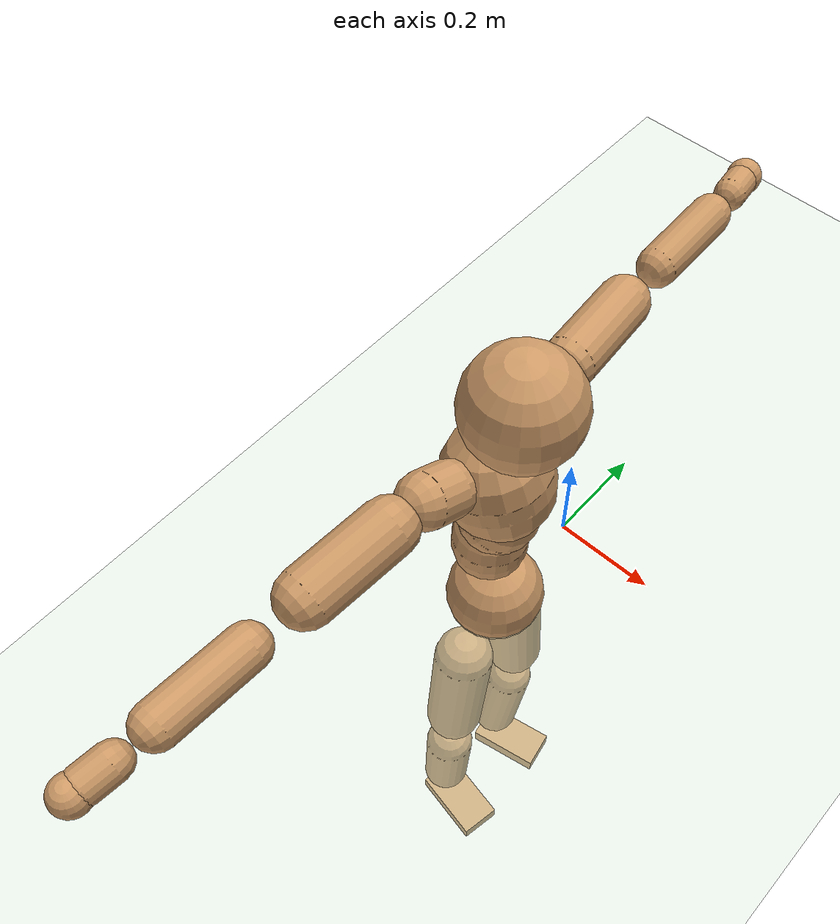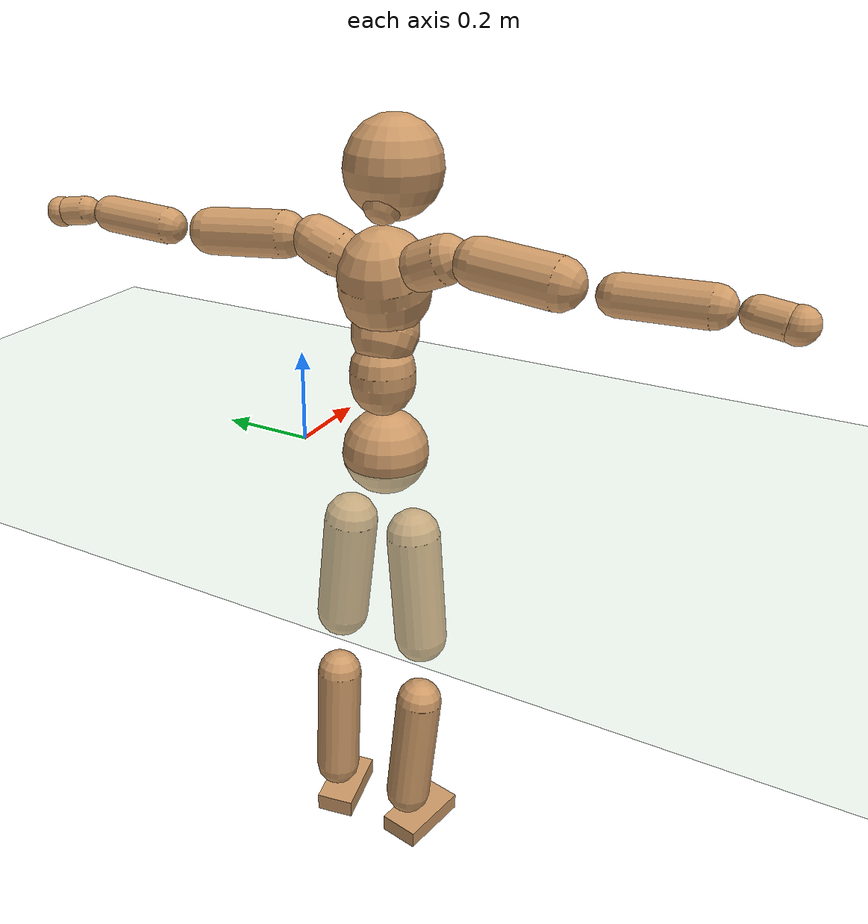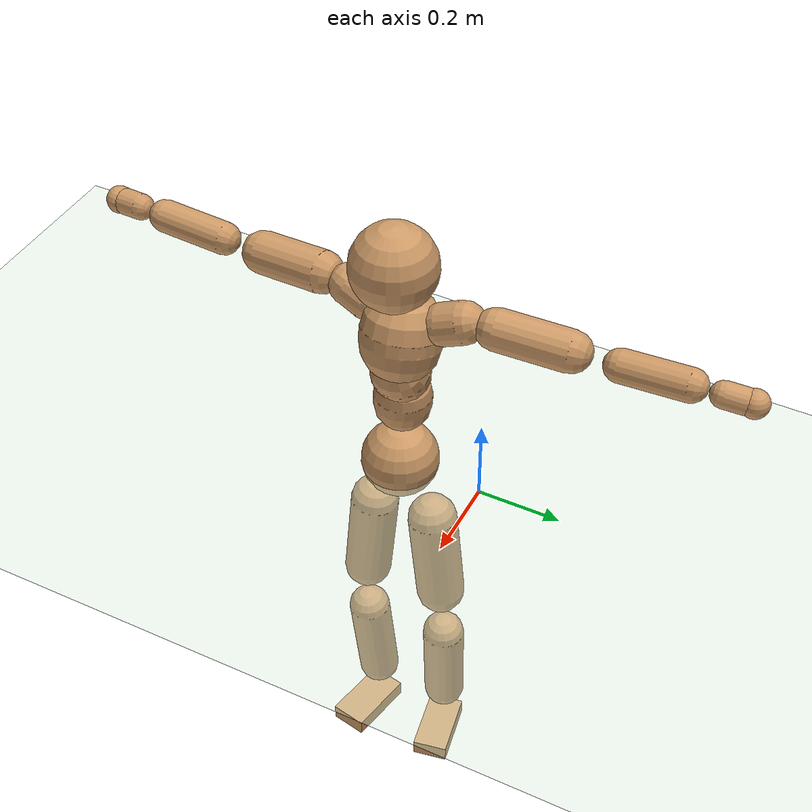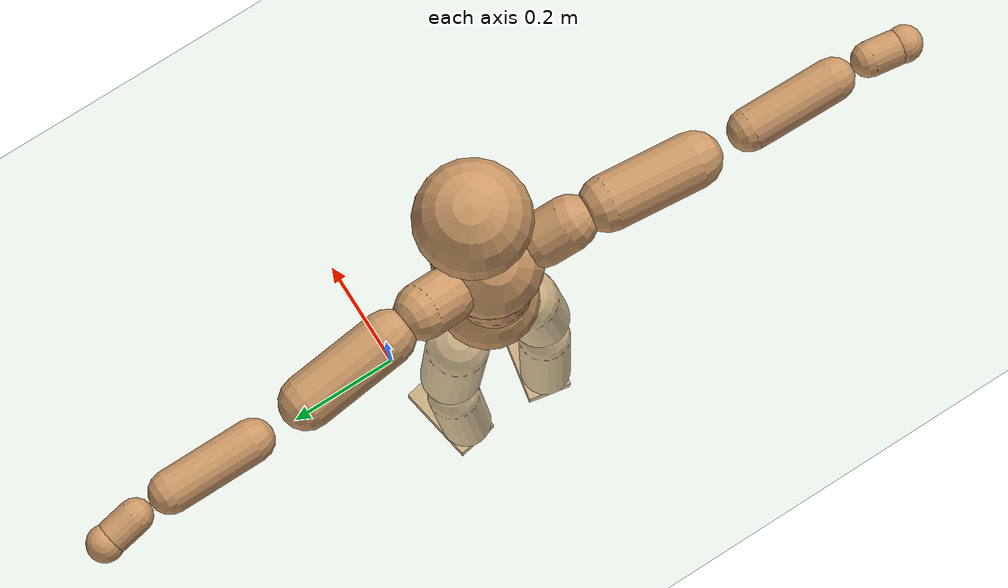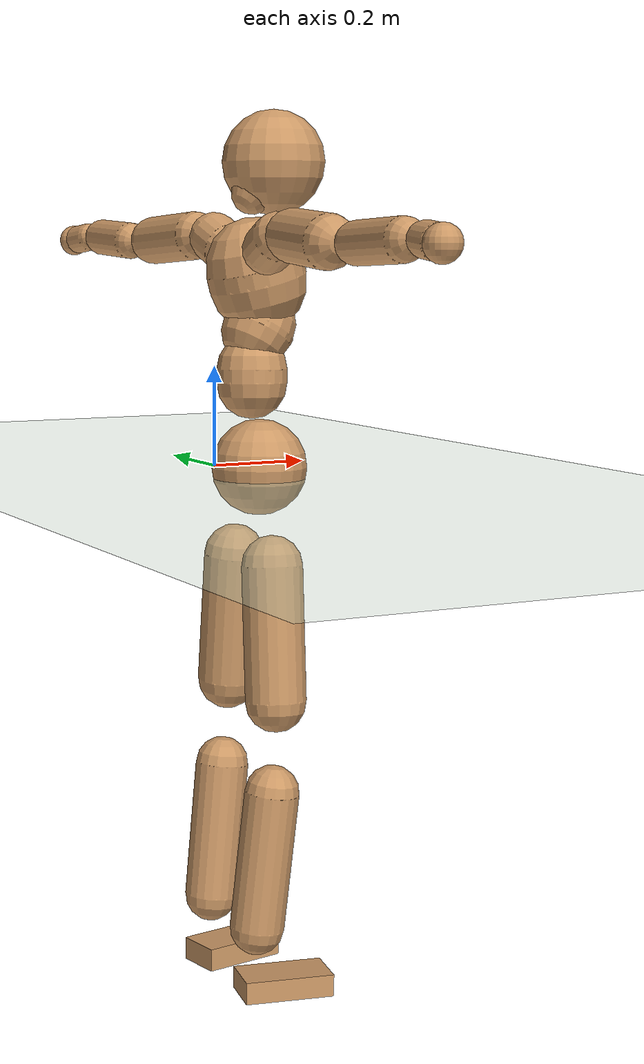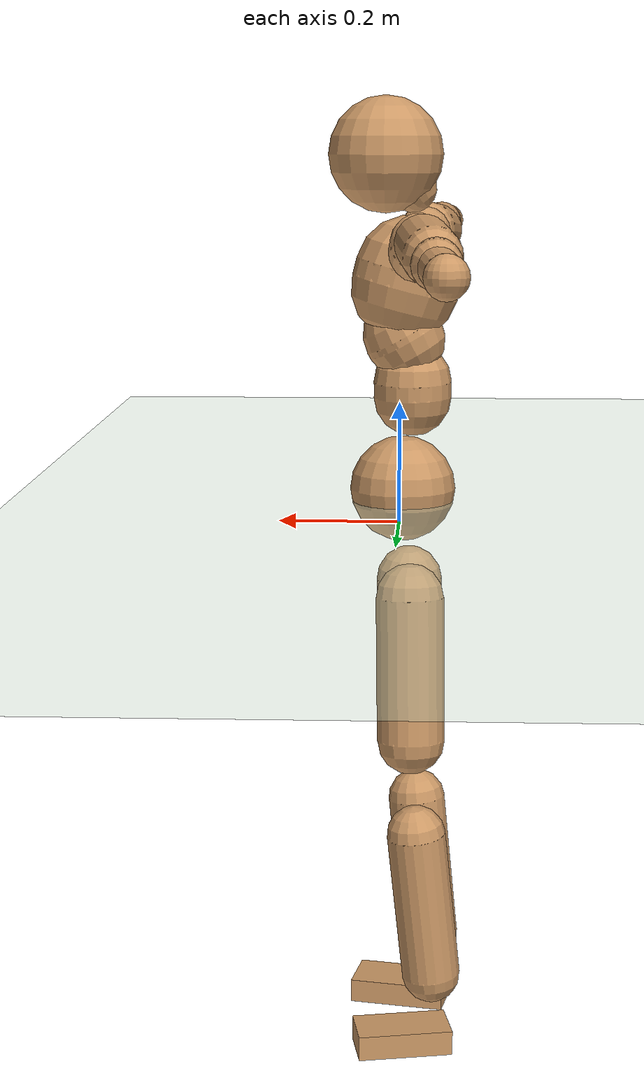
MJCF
<mujoco model="humanoid">
  <compiler coordinate="local" angle="radian"/>
  <default>
    <joint damping="0.0" armature="0.01" stiffness="0.0" limited="true"/>
    <geom conaffinity="1" condim="3" contype="7" margin="0.001" rgba="0.8 0.6 .4 1"/>
  </default>
  <asset>
    <texture type="skybox" builtin="gradient" rgb1=".4 .5 .6" rgb2="0 0 0" width="100" height="100"/>
    <texture builtin="flat" height="1278" mark="cross" markrgb="1 1 1" name="texgeom" random="0.01" rgb1="0.8 0.6 0.4" rgb2="0.8 0.6 0.4" type="cube" width="127"/>
    <texture builtin="checker" height="100" name="texplane" rgb1="0 0 0" rgb2="0.8 0.8 0.8" type="2d" width="100"/>
    <material name="MatPlane" reflectance="0.5" shininess="1" specular="1" texrepeat="60 60" texture="texplane"/>
    <material name="geom" texture="texgeom" texuniform="true"/>
  </asset>
  <worldbody>
    <light cutoff="100" diffuse="1 1 1" dir="-0 0 -1.3" directional="true" exponent="1" pos="0 0 1.3" specular=".1 .1 .1"/>
    <geom conaffinity="1" condim="3" name="floor" pos="0 0 0" rgba="0.8 0.9 0.8 1" size="100 100 .2" type="plane" material="MatPlane"/>
    <body name="Pelvis" pos="-0.0009 -0.2051 0.0192">
      <freejoint name="Pelvis"/>
      <geom type="sphere" contype="1" conaffinity="1" density="500" size="0.0927" pos="0.0000 0.0000 0.0000" name="Pelvis"/>
      <body name="L_Hip" pos="-0.014 0.0698 -0.0955">
        <joint name="L_Hip_x" type="hinge" pos="0 0 0" axis="1 0 0" stiffness="800" damping="80" armature="0.02" range="-180.0000 180.0000"/>
        <joint name="L_Hip_y" type="hinge" pos="0 0 0" axis="0 1 0" stiffness="800" damping="80" armature="0.02" range="-180.0000 180.0000"/>
        <joint name="L_Hip_z" type="hinge" pos="0 0 0" axis="0 0 1" stiffness="800" damping="80" armature="0.02" range="-180.0000 180.0000"/>
        <geom type="capsule" contype="1" conaffinity="1" density="500" fromto="-0.0011 0.0079 -0.0849 -0.0043 0.0316 -0.3397" size="0.0599" name="L_Hip"/>
        <body name="L_Knee" pos="-0.0053 0.0395 -0.4246">
          <joint name="L_Knee_x" type="hinge" pos="0 0 0" axis="1 0 0" stiffness="800" damping="80" armature="0.02" range="-180.0000 180.0000"/>
          <joint name="L_Knee_y" type="hinge" pos="0 0 0" axis="0 1 0" stiffness="800" damping="80" armature="0.02" range="-180.0000 180.0000"/>
          <joint name="L_Knee_z" type="hinge" pos="0 0 0" axis="0 0 1" stiffness="800" damping="80" armature="0.02" range="-180.0000 180.0000"/>
          <geom type="capsule" contype="1" conaffinity="1" density="500" fromto="-0.0094 -0.0026 -0.0902 -0.0375 -0.0104 -0.3608" size="0.0527" name="L_Knee"/>
          <body name="L_Ankle" pos="-0.0469 -0.013 -0.451">
            <joint name="L_Ankle_x" type="hinge" pos="0 0 0" axis="1 0 0" stiffness="800" damping="80" armature="0.02" range="-180.0000 180.0000"/>
            <joint name="L_Ankle_y" type="hinge" pos="0 0 0" axis="0 1 0" stiffness="800" damping="80" armature="0.02" range="-180.0000 180.0000"/>
            <joint name="L_Ankle_z" type="hinge" pos="0 0 0" axis="0 0 1" stiffness="800" damping="80" armature="0.02" range="-180.0000 180.0000"/>
            <geom type="box" contype="1" conaffinity="1" density="500" pos="0.0613 0.0114 -0.0310" size="0.0856 0.045 0.0226" quat="0.9958 0.0000 0.0000 0.0917" name="L_Ankle"/>
            <body name="L_Toe" pos="0.1226 0.0228 -0.062">
              <joint name="L_Toe_x" type="hinge" pos="0 0 0" axis="1 0 0" stiffness="500" damping="50" armature="0.02" range="-180.0000 180.0000"/>
              <joint name="L_Toe_y" type="hinge" pos="0 0 0" axis="0 1 0" stiffness="500" damping="50" armature="0.02" range="-180.0000 180.0000"/>
              <joint name="L_Toe_z" type="hinge" pos="0 0 0" axis="0 0 1" stiffness="500" damping="50" armature="0.02" range="-180.0000 180.0000"/>
              <geom type="box" contype="1" conaffinity="1" density="500" pos="0.0000 0.0000 0.0299" size="0.0009 0.0023 0.0011" quat="0.9952 0.0000 0.0000 0.0979" name="L_Toe"/>
            </body>
          </body>
        </body>
      </body>
      <body name="R_Hip" pos="-0.0089 -0.0672 -0.0949">
        <joint name="R_Hip_x" type="hinge" pos="0 0 0" axis="1 0 0" stiffness="800" damping="80" armature="0.02" range="-180.0000 180.0000"/>
        <joint name="R_Hip_y" type="hinge" pos="0 0 0" axis="0 1 0" stiffness="800" damping="80" armature="0.02" range="-180.0000 180.0000"/>
        <joint name="R_Hip_z" type="hinge" pos="0 0 0" axis="0 0 1" stiffness="800" damping="80" armature="0.02" range="-180.0000 180.0000"/>
        <geom type="capsule" contype="1" conaffinity="1" density="500" fromto="-0.0017 -0.0093 -0.0862 -0.0066 -0.0371 -0.3450" size="0.059" name="R_Hip"/>
        <body name="R_Knee" pos="-0.0083 -0.0464 -0.4312">
          <joint name="R_Knee_x" type="hinge" pos="0 0 0" axis="1 0 0" stiffness="800" damping="80" armature="0.02" range="-180.0000 180.0000"/>
          <joint name="R_Knee_y" type="hinge" pos="0 0 0" axis="0 1 0" stiffness="800" damping="80" armature="0.02" range="-180.0000 180.0000"/>
          <joint name="R_Knee_z" type="hinge" pos="0 0 0" axis="0 0 1" stiffness="800" damping="80" armature="0.02" range="-180.0000 180.0000"/>
          <geom type="capsule" contype="1" conaffinity="1" density="500" fromto="-0.0088 0.0034 -0.0902 -0.0351 0.0137 -0.3607" size="0.0529" name="R_Knee"/>
          <body name="R_Ankle" pos="-0.0439 0.0171 -0.4509">
            <joint name="R_Ankle_x" type="hinge" pos="0 0 0" axis="1 0 0" stiffness="800" damping="80" armature="0.02" range="-180.0000 180.0000"/>
            <joint name="R_Ankle_y" type="hinge" pos="0 0 0" axis="0 1 0" stiffness="800" damping="80" armature="0.02" range="-180.0000 180.0000"/>
            <joint name="R_Ankle_z" type="hinge" pos="0 0 0" axis="0 0 1" stiffness="800" damping="80" armature="0.02" range="-180.0000 180.0000"/>
            <geom type="box" contype="1" conaffinity="1" density="500" pos="0.0631 -0.0119 -0.0265" size="0.0884 0.0471 0.0218" quat="0.9957 0.0000 0.0000 -0.0931" name="R_Ankle"/>
            <body name="R_Toe" pos="0.1262 -0.0238 -0.053">
              <joint name="R_Toe_x" type="hinge" pos="0 0 0" axis="1 0 0" stiffness="500" damping="50" armature="0.02" range="-180.0000 180.0000"/>
              <joint name="R_Toe_y" type="hinge" pos="0 0 0" axis="0 1 0" stiffness="500" damping="50" armature="0.02" range="-180.0000 180.0000"/>
              <joint name="R_Toe_z" type="hinge" pos="0 0 0" axis="0 0 1" stiffness="500" damping="50" armature="0.02" range="-180.0000 180.0000"/>
              <geom type="box" contype="1" conaffinity="1" density="500" pos="0.0000 0.0000 0.0287" size="0.0009 0.0023 0.0012" quat="0.9965 0.0000 0.0000 -0.0841" name="R_Toe"/>
            </body>
          </body>
        </body>
      </body>
      <body name="Torso" pos="-0.0175 -0.0027 0.1089">
        <joint name="Torso_x" type="hinge" pos="0 0 0" axis="1 0 0" stiffness="1000" damping="100" armature="0.02" range="-180.0000 180.0000"/>
        <joint name="Torso_y" type="hinge" pos="0 0 0" axis="0 1 0" stiffness="1000" damping="100" armature="0.02" range="-180.0000 180.0000"/>
        <joint name="Torso_z" type="hinge" pos="0 0 0" axis="0 0 1" stiffness="1000" damping="100" armature="0.02" range="-180.0000 180.0000"/>
        <geom type="capsule" contype="1" conaffinity="1" density="500" fromto="0.0010 0.0023 0.0795 0.0007 0.0015 0.0530" size="0.0681" name="Torso"/>
        <body name="Spine" pos="0.0017 0.0038 0.1325">
          <joint name="Spine_x" type="hinge" pos="0 0 0" axis="1 0 0" stiffness="1000" damping="100" armature="0.02" range="-180.0000 180.0000"/>
          <joint name="Spine_y" type="hinge" pos="0 0 0" axis="0 1 0" stiffness="1000" damping="100" armature="0.02" range="-180.0000 180.0000"/>
          <joint name="Spine_z" type="hinge" pos="0 0 0" axis="0 0 1" stiffness="1000" damping="100" armature="0.02" range="-180.0000 180.0000"/>
          <geom type="capsule" contype="1" conaffinity="1" density="500" fromto="0.0172 0.0012 0.0305 0.0115 0.0008 0.0203" size="0.0695" name="Spine"/>
          <body name="Chest" pos="0.0287 0.0019 0.0508">
            <joint name="Chest_x" type="hinge" pos="0 0 0" axis="1 0 0" stiffness="1000" damping="100" armature="0.02" range="-180.0000 180.0000"/>
            <joint name="Chest_y" type="hinge" pos="0 0 0" axis="0 1 0" stiffness="1000" damping="100" armature="0.02" range="-180.0000 180.0000"/>
            <joint name="Chest_z" type="hinge" pos="0 0 0" axis="0 0 1" stiffness="1000" damping="100" armature="0.02" range="-180.0000 180.0000"/>
            <geom type="capsule" contype="1" conaffinity="1" density="500" fromto="-0.0234 -0.0011 0.0893 -0.0156 -0.0007 0.0595" size="0.0939" name="Chest"/>
            <body name="Neck" pos="-0.0403 -0.0034 0.2131">
              <joint name="Neck_x" type="hinge" pos="0 0 0" axis="1 0 0" stiffness="500" damping="50" armature="0.02" range="-180.0000 180.0000"/>
              <joint name="Neck_y" type="hinge" pos="0 0 0" axis="0 1 0" stiffness="500" damping="50" armature="0.02" range="-180.0000 180.0000"/>
              <joint name="Neck_z" type="hinge" pos="0 0 0" axis="0 0 1" stiffness="500" damping="50" armature="0.02" range="-180.0000 180.0000"/>
              <geom type="capsule" contype="1" conaffinity="1" density="500" fromto="0.0116 0.0010 0.0142 0.0463 0.0041 0.0568" size="0.041" name="Neck"/>
              <body name="Head" pos="0.0578 0.0052 0.0709">
                <joint name="Head_x" type="hinge" pos="0 0 0" axis="1 0 0" stiffness="500" damping="50" armature="0.02" range="-180.0000 180.0000"/>
                <joint name="Head_y" type="hinge" pos="0 0 0" axis="0 1 0" stiffness="500" damping="50" armature="0.02" range="-180.0000 180.0000"/>
                <joint name="Head_z" type="hinge" pos="0 0 0" axis="0 0 1" stiffness="500" damping="50" armature="0.02" range="-180.0000 180.0000"/>
                <geom type="sphere" contype="1" conaffinity="1" density="500" size="0.0984" pos="0.0000 0.0000 0.0000" name="Head"/>
              </body>
            </body>
            <body name="L_Thorax" pos="-0.0363 0.0742 0.1174">
              <joint name="L_Thorax_x" type="hinge" pos="0 0 0" axis="1 0 0" stiffness="500" damping="50" armature="0.02" range="-180.0000 180.0000"/>
              <joint name="L_Thorax_y" type="hinge" pos="0 0 0" axis="0 1 0" stiffness="500" damping="50" armature="0.02" range="-180.0000 180.0000"/>
              <joint name="L_Thorax_z" type="hinge" pos="0 0 0" axis="0 0 1" stiffness="500" damping="50" armature="0.02" range="-180.0000 180.0000"/>
              <geom type="capsule" contype="1" conaffinity="1" density="500" fromto="-0.0014 0.0159 0.0067 -0.0056 0.0637 0.0266" size="0.0487" name="L_Thorax"/>
              <body name="L_Shoulder" pos="-0.007 0.0797 0.0333">
                <joint name="L_Shoulder_x" type="hinge" pos="0 0 0" axis="1 0 0" stiffness="500" damping="50" armature="0.02" range="-720.0000 720.0000"/>
                <joint name="L_Shoulder_y" type="hinge" pos="0 0 0" axis="0 1 0" stiffness="500" damping="50" armature="0.02" range="-720.0000 720.0000"/>
                <joint name="L_Shoulder_z" type="hinge" pos="0 0 0" axis="0 0 1" stiffness="500" damping="50" armature="0.02" range="-720.0000 720.0000"/>
                <geom type="capsule" contype="1" conaffinity="1" density="500" fromto="-0.0059 0.0552 -0.0034 -0.0234 0.2208 -0.0135" size="0.0473" name="L_Shoulder"/>
                <body name="L_Elbow" pos="-0.0293 0.276 -0.0169">
                  <joint name="L_Elbow_x" type="hinge" pos="0 0 0" axis="1 0 0" stiffness="500" damping="50" armature="0.02" range="-720.0000 720.0000"/>
                  <joint name="L_Elbow_y" type="hinge" pos="0 0 0" axis="0 1 0" stiffness="500" damping="50" armature="0.02" range="-720.0000 720.0000"/>
                  <joint name="L_Elbow_z" type="hinge" pos="0 0 0" axis="0 0 1" stiffness="500" damping="50" armature="0.02" range="-720.0000 720.0000"/>
                  <geom type="capsule" contype="1" conaffinity="1" density="500" fromto="-0.0004 0.0514 0.0024 -0.0017 0.2055 0.0097" size="0.0374" name="L_Elbow"/>
                  <body name="L_Wrist" pos="-0.0021 0.2569 0.0121">
                    <joint name="L_Wrist_x" type="hinge" pos="0 0 0" axis="1 0 0" stiffness="300" damping="30" armature="0.02" range="-180.0000 180.0000"/>
                    <joint name="L_Wrist_y" type="hinge" pos="0 0 0" axis="0 1 0" stiffness="300" damping="30" armature="0.02" range="-180.0000 180.0000"/>
                    <joint name="L_Wrist_z" type="hinge" pos="0 0 0" axis="0 0 1" stiffness="300" damping="30" armature="0.02" range="-180.0000 180.0000"/>
                    <geom type="capsule" contype="1" conaffinity="1" density="500" fromto="-0.0027 0.0160 -0.0020 -0.0109 0.0638 -0.0079" size="0.0297" name="L_Wrist"/>
                    <body name="L_Hand" pos="-0.0136 0.0798 -0.0098">
                      <joint name="L_Hand_x" type="hinge" pos="0 0 0" axis="1 0 0" stiffness="300" damping="30" armature="0.02" range="-180.0000 180.0000"/>
                      <joint name="L_Hand_y" type="hinge" pos="0 0 0" axis="0 1 0" stiffness="300" damping="30" armature="0.02" range="-180.0000 180.0000"/>
                      <joint name="L_Hand_z" type="hinge" pos="0 0 0" axis="0 0 1" stiffness="300" damping="30" armature="0.02" range="-180.0000 180.0000"/>
                      <geom type="sphere" contype="1" conaffinity="1" density="500" size="0.0321" pos="0.0000 0.0000 0.0000" name="L_Hand"/>
                    </body>
                  </body>
                </body>
              </body>
            </body>
            <body name="R_Thorax" pos="-0.0405 -0.0762 0.1159">
              <joint name="R_Thorax_x" type="hinge" pos="0 0 0" axis="1 0 0" stiffness="500" damping="50" armature="0.02" range="-180.0000 180.0000"/>
              <joint name="R_Thorax_y" type="hinge" pos="0 0 0" axis="0 1 0" stiffness="500" damping="50" armature="0.02" range="-180.0000 180.0000"/>
              <joint name="R_Thorax_z" type="hinge" pos="0 0 0" axis="0 0 1" stiffness="500" damping="50" armature="0.02" range="-180.0000 180.0000"/>
              <geom type="capsule" contype="1" conaffinity="1" density="500" fromto="-0.0015 -0.0166 0.0071 -0.0060 -0.0664 0.0282" size="0.0478" name="R_Thorax"/>
              <body name="R_Shoulder" pos="-0.0075 -0.083 0.0353">
                <joint name="R_Shoulder_x" type="hinge" pos="0 0 0" axis="1 0 0" stiffness="500" damping="50" armature="0.02" range="-720.0000 720.0000"/>
                <joint name="R_Shoulder_y" type="hinge" pos="0 0 0" axis="0 1 0" stiffness="500" damping="50" armature="0.02" range="-720.0000 720.0000"/>
                <joint name="R_Shoulder_z" type="hinge" pos="0 0 0" axis="0 0 1" stiffness="500" damping="50" armature="0.02" range="-720.0000 720.0000"/>
                <geom type="capsule" contype="1" conaffinity="1" density="500" fromto="-0.0044 -0.0532 -0.0035 -0.0176 -0.2129 -0.0141" size="0.0494" name="R_Shoulder"/>
                <body name="R_Elbow" pos="-0.022 -0.2661 -0.0177">
                  <joint name="R_Elbow_x" type="hinge" pos="0 0 0" axis="1 0 0" stiffness="500" damping="50" armature="0.02" range="-720.0000 720.0000"/>
                  <joint name="R_Elbow_y" type="hinge" pos="0 0 0" axis="0 1 0" stiffness="500" damping="50" armature="0.02" range="-720.0000 720.0000"/>
                  <joint name="R_Elbow_z" type="hinge" pos="0 0 0" axis="0 0 1" stiffness="500" damping="50" armature="0.02" range="-720.0000 720.0000"/>
                  <geom type="capsule" contype="1" conaffinity="1" density="500" fromto="-0.0013 -0.0535 0.0021 -0.0053 -0.2139 0.0084" size="0.0381" name="R_Elbow"/>
                  <body name="R_Wrist" pos="-0.0066 -0.2674 0.0105">
                    <joint name="R_Wrist_x" type="hinge" pos="0 0 0" axis="1 0 0" stiffness="300" damping="30" armature="0.02" range="-180.0000 180.0000"/>
                    <joint name="R_Wrist_y" type="hinge" pos="0 0 0" axis="0 1 0" stiffness="300" damping="30" armature="0.02" range="-180.0000 180.0000"/>
                    <joint name="R_Wrist_z" type="hinge" pos="0 0 0" axis="0 0 1" stiffness="300" damping="30" armature="0.02" range="-180.0000 180.0000"/>
                    <geom type="capsule" contype="1" conaffinity="1" density="500" fromto="-0.0021 -0.0162 -0.0015 -0.0084 -0.0648 -0.0058" size="0.0307" name="R_Wrist"/>
                    <body name="R_Hand" pos="-0.0105 -0.081 -0.0073">
                      <joint name="R_Hand_x" type="hinge" pos="0 0 0" axis="1 0 0" stiffness="300" damping="30" armature="0.02" range="-180.0000 180.0000"/>
                      <joint name="R_Hand_y" type="hinge" pos="0 0 0" axis="0 1 0" stiffness="300" damping="30" armature="0.02" range="-180.0000 180.0000"/>
                      <joint name="R_Hand_z" type="hinge" pos="0 0 0" axis="0 0 1" stiffness="300" damping="30" armature="0.02" range="-180.0000 180.0000"/>
                      <geom type="sphere" contype="1" conaffinity="1" density="500" size="0.0325" pos="0.0000 0.0000 0.0000" name="R_Hand"/>
                    </body>
                  </body>
                </body>
              </body>
            </body>
          </body>
        </body>
      </body>
    </body>
  </worldbody>
  <actuator>
    <motor name="L_Hip_x" joint="L_Hip_x" gear="500"/>
    <motor name="L_Hip_y" joint="L_Hip_y" gear="500"/>
    <motor name="L_Hip_z" joint="L_Hip_z" gear="500"/>
    <motor name="L_Knee_x" joint="L_Knee_x" gear="500"/>
    <motor name="L_Knee_y" joint="L_Knee_y" gear="500"/>
    <motor name="L_Knee_z" joint="L_Knee_z" gear="500"/>
    <motor name="L_Ankle_x" joint="L_Ankle_x" gear="500"/>
    <motor name="L_Ankle_y" joint="L_Ankle_y" gear="500"/>
    <motor name="L_Ankle_z" joint="L_Ankle_z" gear="500"/>
    <motor name="L_Toe_x" joint="L_Toe_x" gear="500"/>
    <motor name="L_Toe_y" joint="L_Toe_y" gear="500"/>
    <motor name="L_Toe_z" joint="L_Toe_z" gear="500"/>
    <motor name="R_Hip_x" joint="R_Hip_x" gear="500"/>
    <motor name="R_Hip_y" joint="R_Hip_y" gear="500"/>
    <motor name="R_Hip_z" joint="R_Hip_z" gear="500"/>
    <motor name="R_Knee_x" joint="R_Knee_x" gear="500"/>
    <motor name="R_Knee_y" joint="R_Knee_y" gear="500"/>
    <motor name="R_Knee_z" joint="R_Knee_z" gear="500"/>
    <motor name="R_Ankle_x" joint="R_Ankle_x" gear="500"/>
    <motor name="R_Ankle_y" joint="R_Ankle_y" gear="500"/>
    <motor name="R_Ankle_z" joint="R_Ankle_z" gear="500"/>
    <motor name="R_Toe_x" joint="R_Toe_x" gear="500"/>
    <motor name="R_Toe_y" joint="R_Toe_y" gear="500"/>
    <motor name="R_Toe_z" joint="R_Toe_z" gear="500"/>
    <motor name="Torso_x" joint="Torso_x" gear="500"/>
    <motor name="Torso_y" joint="Torso_y" gear="500"/>
    <motor name="Torso_z" joint="Torso_z" gear="500"/>
    <motor name="Spine_x" joint="Spine_x" gear="500"/>
    <motor name="Spine_y" joint="Spine_y" gear="500"/>
    <motor name="Spine_z" joint="Spine_z" gear="500"/>
    <motor name="Chest_x" joint="Chest_x" gear="500"/>
    <motor name="Chest_y" joint="Chest_y" gear="500"/>
    <motor name="Chest_z" joint="Chest_z" gear="500"/>
    <motor name="Neck_x" joint="Neck_x" gear="500"/>
    <motor name="Neck_y" joint="Neck_y" gear="500"/>
    <motor name="Neck_z" joint="Neck_z" gear="500"/>
    <motor name="Head_x" joint="Head_x" gear="500"/>
    <motor name="Head_y" joint="Head_y" gear="500"/>
    <motor name="Head_z" joint="Head_z" gear="500"/>
    <motor name="L_Thorax_x" joint="L_Thorax_x" gear="500"/>
    <motor name="L_Thorax_y" joint="L_Thorax_y" gear="500"/>
    <motor name="L_Thorax_z" joint="L_Thorax_z" gear="500"/>
    <motor name="L_Shoulder_x" joint="L_Shoulder_x" gear="500"/>
    <motor name="L_Shoulder_y" joint="L_Shoulder_y" gear="500"/>
    <motor name="L_Shoulder_z" joint="L_Shoulder_z" gear="500"/>
    <motor name="L_Elbow_x" joint="L_Elbow_x" gear="500"/>
    <motor name="L_Elbow_y" joint="L_Elbow_y" gear="500"/>
    <motor name="L_Elbow_z" joint="L_Elbow_z" gear="500"/>
    <motor name="L_Wrist_x" joint="L_Wrist_x" gear="500"/>
    <motor name="L_Wrist_y" joint="L_Wrist_y" gear="500"/>
    <motor name="L_Wrist_z" joint="L_Wrist_z" gear="500"/>
    <motor name="L_Hand_x" joint="L_Hand_x" gear="500"/>
    <motor name="L_Hand_y" joint="L_Hand_y" gear="500"/>
    <motor name="L_Hand_z" joint="L_Hand_z" gear="500"/>
    <motor name="R_Thorax_x" joint="R_Thorax_x" gear="500"/>
    <motor name="R_Thorax_y" joint="R_Thorax_y" gear="500"/>
    <motor name="R_Thorax_z" joint="R_Thorax_z" gear="500"/>
    <motor name="R_Shoulder_x" joint="R_Shoulder_x" gear="500"/>
    <motor name="R_Shoulder_y" joint="R_Shoulder_y" gear="500"/>
    <motor name="R_Shoulder_z" joint="R_Shoulder_z" gear="500"/>
    <motor name="R_Elbow_x" joint="R_Elbow_x" gear="500"/>
    <motor name="R_Elbow_y" joint="R_Elbow_y" gear="500"/>
    <motor name="R_Elbow_z" joint="R_Elbow_z" gear="500"/>
    <motor name="R_Wrist_x" joint="R_Wrist_x" gear="500"/>
    <motor name="R_Wrist_y" joint="R_Wrist_y" gear="500"/>
    <motor name="R_Wrist_z" joint="R_Wrist_z" gear="500"/>
    <motor name="R_Hand_x" joint="R_Hand_x" gear="500"/>
    <motor name="R_Hand_y" joint="R_Hand_y" gear="500"/>
    <motor name="R_Hand_z" joint="R_Hand_z" gear="500"/>
  </actuator>
  <contact>
    <exclude body1="Torso" body2="Chest"/>
    <exclude body1="Head" body2="Chest"/>
    <exclude body1="R_Knee" body2="R_Toe"/>
    <exclude body1="R_Knee" body2="L_Ankle"/>
    <exclude body1="R_Knee" body2="L_Toe"/>
    <exclude body1="L_Knee" body2="L_Toe"/>
    <exclude body1="L_Knee" body2="R_Ankle"/>
    <exclude body1="L_Knee" body2="R_Toe"/>
    <exclude body1="L_Shoulder" body2="Chest"/>
    <exclude body1="R_Shoulder" body2="Chest"/>
  </contact>
  <sensor/>
  <size njmax="700" nconmax="700"/>
</mujoco>
